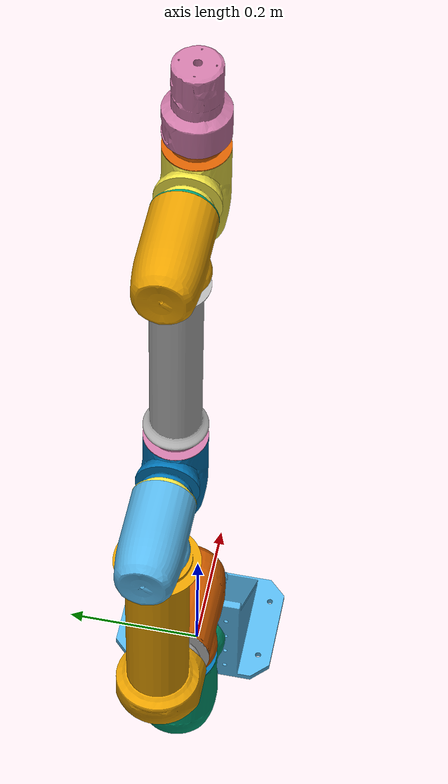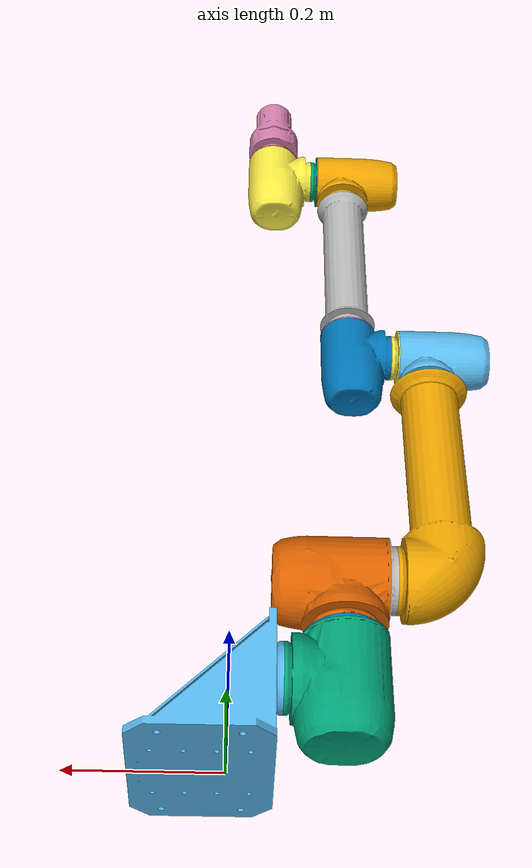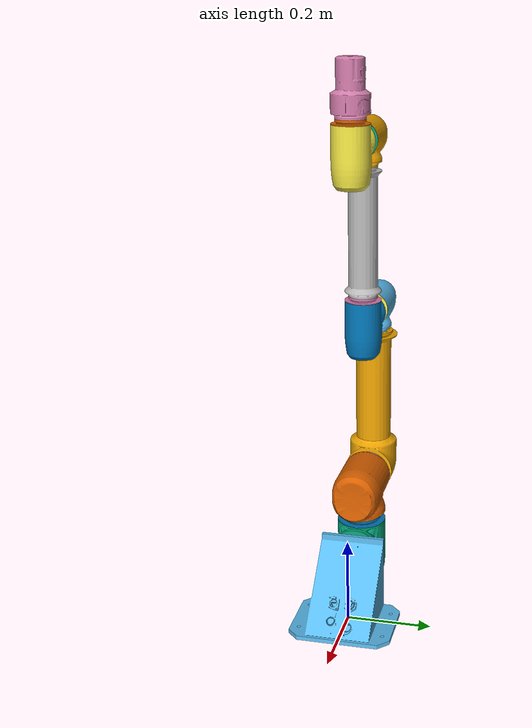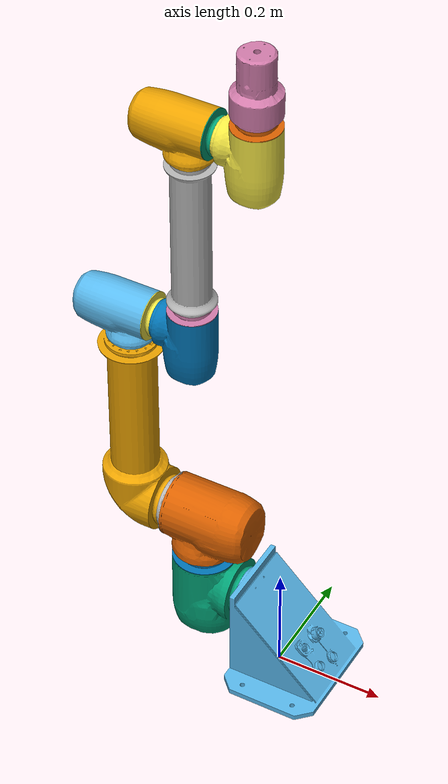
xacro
<?xml version="1.0" ?>

<robot name="robco" xmlns:xacro="http://www.ros.org/wiki/xacro">
    <xacro:include filename="$(find robco_description)/urdf/robco_modules.xacro"/>
    <link name="world"/>            <!-- Virtual link to fix the robot to the ground-->

    <joint name="world__base" type="fixed">
        <origin rpy="0 0 0" xyz="0 0 0.132"/>
        <parent link="world"/>
        <child link="base"/>
    </joint>

    <xacro:robco_module_0106 name="base" next="drive1"/>       <!-- Base module -->
    <xacro:robco_module_0088 name="drive1" next="drive2"/>     <!-- Drive module -->
    <xacro:robco_module_0089 name="drive2" next="link0"/>      <!-- Drive module -->
    <xacro:robco_module_0078 name="link0" next="drive3"/>      <!-- Link module -->
    <xacro:robco_module_0085 name="drive3" next="drive4"/>     <!-- Drive module -->
    <xacro:robco_module_0085 name="drive4" next="link1"/>      <!-- Drive module -->
    <xacro:robco_module_0007 name="link1" next="drive5"/>      <!-- Link module -->
    <xacro:robco_module_0085 name="drive5" next="drive6"/>     <!-- Drive module -->
    <xacro:robco_module_0085 name="drive6" next="effector"/>   <!-- Drive module -->
    <xacro:robco_module_0801 name="effector"/>                 <!-- Effector module -->
</robot>

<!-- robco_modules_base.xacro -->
<robot xmlns="http://www.ros.org" xmlns:xacro="http://www.ros.org/wiki/xacro">
    <!-- Gets resolved to the path to the robco_descrptions package -->
    <xacro:property name="description_package" value="$(find robco_description)" />

    <!-- Base module -->
    <xacro:macro name="robco_base_module"
        params="name mesh_filename tf_rpy tf_xyz proximal_mass
                proximal_ixx proximal_ixy proximal_ixz proximal_iyy
                proximal_iyz proximal_izz proximal_com_xyz next">
        <link name="${name}">
            <visual>
                <geometry>
                    <mesh filename="file://${description_package}/meshes/${mesh_filename}" />
                </geometry>
            </visual>
            <collision>
                <geometry>
                    <mesh filename="file://${description_package}/meshes/${mesh_filename}" />
                </geometry>
            </collision>
            <inertial>
                <mass value="${proximal_mass}" />
                <inertia ixx="${proximal_ixx}" ixy="${proximal_ixy}" ixz="${proximal_ixz}"
                    iyy="${proximal_iyy}" iyz="${proximal_iyz}"
                    izz="${proximal_izz}" />
                <origin rpy="0 0 0" xyz="${proximal_com_xyz}" />
            </inertial>
        </link>

        <xacro:if value="${next != ''}">
            <joint name="${name}__${next}" type="fixed">
                <origin rpy="${tf_rpy}" xyz="${tf_xyz}" />
                <parent link="${name}" />
                <child link="${next}" />
            </joint>
        </xacro:if>
    </xacro:macro>

    <!-- Link module -->
    <xacro:macro name="robco_link_module"
        params="name mesh_filename tf_rpy tf_xyz proximal_mass
                proximal_ixx proximal_ixy proximal_ixz proximal_iyy
                proximal_iyz proximal_izz proximal_com_xyz next">
        <link name="${name}">
            <visual>
                <geometry>
                    <mesh filename="file://${description_package}/meshes/${mesh_filename}" />
                </geometry>
            </visual>

            <collision>
                <geometry>
                    <mesh filename="file://${description_package}/meshes/${mesh_filename}" />
                </geometry>
            </collision>

            <inertial>
                <mass value="${proximal_mass}" />
                <inertia
                    ixx="${proximal_ixx}" ixy="${proximal_ixy}"
                    ixz="${proximal_ixz}" iyy="${proximal_iyy}"
                    iyz="${proximal_iyz}" izz="${proximal_izz}"
                />
                <origin rpy="0 0 0" xyz="${proximal_com_xyz}" />
            </inertial>
        </link>

        <xacro:if value="${next != ''}">
            <joint name="${name}__${next}" type="fixed">
                <origin rpy="${tf_rpy}" xyz="${tf_xyz}" />
                <parent link="${name}" />
                <child link="${next}" />
            </joint>
        </xacro:if>
    </xacro:macro>

    <!-- Drive module -->
    <xacro:macro name="robco_drive_module"
        params="name proximal_mesh_filename distal_mesh_filename
                proximal_tf_rpy proximal_tf_xyz distal_tf_rpy distal_tf_xyz
                lim_lower:=-4.7124 lim_upper:=4.7124 proximal_mass proximal_ixx
                proximal_ixy proximal_ixz proximal_iyy proximal_iyz proximal_izz
                proximal_com_xyz distal_mass distal_ixx distal_ixy distal_ixz
                distal_iyy distal_iyz distal_izz distal_com_xyz next">
        <!-- proximal link, calle ${name} to keep compatibility with next=... parameter -->
        <link name="${name}">
            <visual>
                <geometry>
                    <mesh
                        filename="file://${description_package}/meshes/${proximal_mesh_filename}" />
                </geometry>
            </visual>

            <collision>
                <geometry>
                    <mesh
                        filename="file://${description_package}/meshes/${proximal_mesh_filename}" />
                </geometry>
            </collision>

            <inertial>
                <mass value="${proximal_mass}" />
                <inertia
                    ixx="${proximal_ixx}" ixy="${proximal_ixy}"
                    ixz="${proximal_ixz}" iyy="${proximal_iyy}"
                    iyz="${proximal_iyz}" izz="${proximal_izz}"
                />
                <origin rpy="0 0 0" xyz="${proximal_com_xyz}" />
            </inertial>
        </link>

        <joint name="${name}__${name}_shaft" type="fixed">
            <origin rpy="${proximal_tf_rpy}" xyz="${proximal_tf_xyz}" />
            <parent link="${name}" />
            <child link="${name}_shaft" />
        </joint>

        <link name="${name}_shaft">
            <inertial>
                <origin xyz="0 0 0" rpy="0 0 0" />
                <mass value="0.001" />
                <inertia ixx="0.0" ixy="0.0" ixz="0.0" iyy="0.0" iyz="0.0" izz="0.0" />
            </inertial>
        </link>

        <joint name="${name}_joint" type="revolute">
            <origin rpy="${distal_tf_rpy}" xyz="${distal_tf_xyz}" />
            <axis xyz="0 0 1" />
            <limit lower="${lim_lower}" upper="${lim_upper}" effort="0" velocity="4.25" />
            <parent link="${name}_shaft" />
            <child link="${name}_distal" />
        </joint>

        <link name="${name}_distal">
            <visual>
                <geometry>
                    <mesh filename="file://${description_package}/meshes/${distal_mesh_filename}" />
                </geometry>
            </visual>

            <collision>
                <geometry>
                    <mesh filename="file://${description_package}/meshes/${distal_mesh_filename}" />
                </geometry>
            </collision>

            <inertial>
                <mass value="${distal_mass}" />
                <inertia
                    ixx="${distal_ixx}" ixy="${distal_ixy}"
                    ixz="${distal_ixz}" iyy="${distal_iyy}"
                    iyz="${distal_iyz}" izz="${distal_izz}"
                />
                <origin rpy="0 0 0" xyz="${distal_com_xyz}" />
            </inertial>
        </link>

        <xacro:if value="${next != ''}">
            <joint name="${name}_distal__${next}" type="fixed">
                <parent link="${name}_distal" />
                <child link="${next}" />
            </joint>
        </xacro:if>
    </xacro:macro>

    <!-- Effector module -->
    <xacro:macro name="robco_end_effector"
        params="name mesh_filename tf_rpy tf_xyz proximal_mass
                proximal_ixx proximal_ixy proximal_ixz proximal_iyy
                proximal_iyz proximal_izz proximal_com_xyz">
        <link name="${name}">
            <visual>
                <geometry>
                    <mesh filename="file://${description_package}/meshes/${mesh_filename}" />
                </geometry>
            </visual>

            <collision>
                <geometry>
                    <mesh filename="file://${description_package}/meshes/${mesh_filename}" />
                </geometry>
            </collision>

            <inertial>
                <mass value="${proximal_mass}" />
                <inertia
                    ixx="${proximal_ixx}" ixy="${proximal_ixy}"
                    ixz="${proximal_ixz}" iyy="${proximal_iyy}"
                    iyz="${proximal_iyz}" izz="${proximal_izz}"
                />
                <origin rpy="0 0 0" xyz="${proximal_com_xyz}" />
            </inertial>
        </link>
    </xacro:macro>
</robot>
